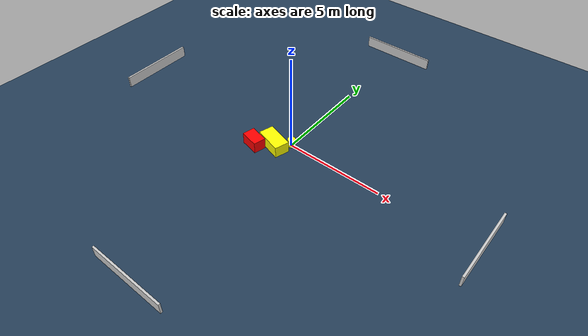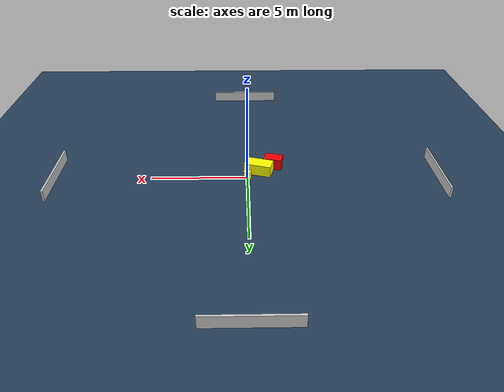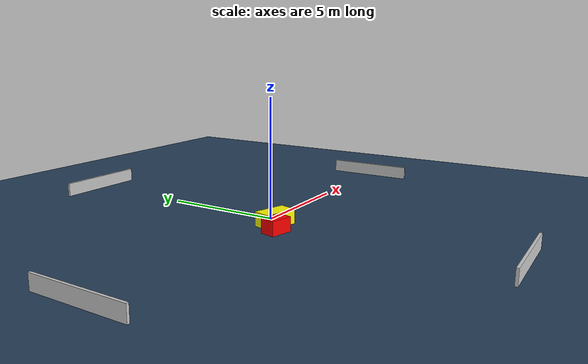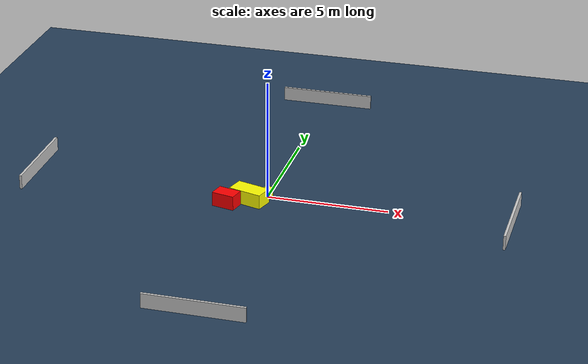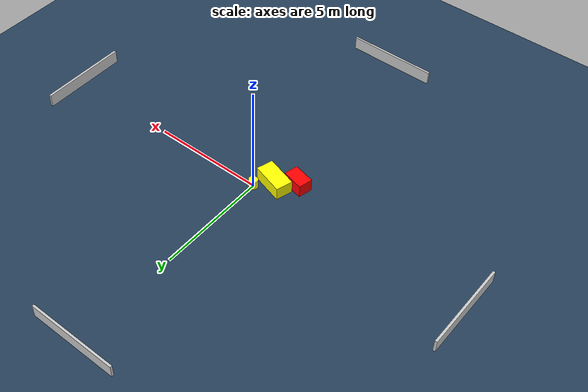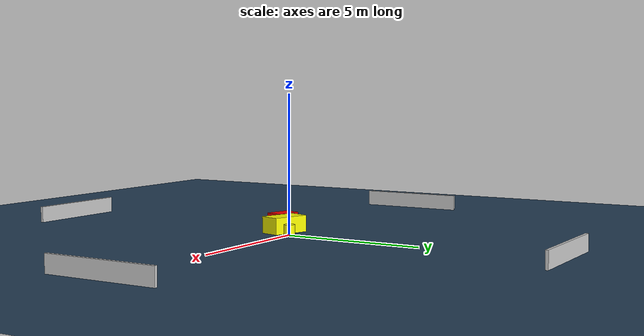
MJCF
<?xml version="1.0" ?>
<mujoco model="generated_environment">
  <option timestep="0.01" integrator="RK4" cone="elliptic"/>
  <default>
    <geom density="1"/>
  </default>
  <asset>
    <texture builtin="gradient" height="3072" name="skybox" rgb1="0.3 0.5 0.7" rgb2="0 0 0" type="skybox" width="512"/>
    <texture builtin="checker" height="300" name="groundplane" rgb1="0.2 0.3 0.4" rgb2="0.1 0.2 0.3" type="2d" width="300"/>
    <material name="groundplane" reflectance="0.2" texrepeat="5 5" texture="groundplane"/>
  </asset>
  <worldbody>
    <light dir="0 0 -1" directional="true" pos="0 0 1.5"/>
    <geom condim="3" friction="0.5 0.005 0.001" material="groundplane" name="floor" pos="0 0 0" size="0 0 0.05" type="plane"/>
    <body name="walls">
      <geom name="wall_1" condim="4" pos="-10.0 0.0 0.3" rgba="0.800000011920929 0.800000011920929 0.800000011920929 1.0" size="0.05 2.0 0.3" type="box"/>
      <geom name="wall_2" condim="4" pos="10.0 0.0 0.3" rgba="0.800000011920929 0.800000011920929 0.800000011920929 1.0" size="0.05 2.0 0.3" type="box"/>
      <geom name="wall_3" condim="4" pos="0.0 -10.0 0.3" rgba="0.800000011920929 0.800000011920929 0.800000011920929 1.0" size="2.0 0.05 0.3" type="box"/>
      <geom name="wall_4" condim="4" pos="0.0 10.0 0.3" rgba="0.800000011920929 0.800000011920929 0.800000011920929 1.0" size="2.0 0.05 0.3" type="box"/>
    </body>
    <body name="robot">
      <joint name="joint_x" type="slide" pos="0 0 0" axis="1 0 0"/>
      <joint name="joint_y" type="slide" pos="0 0 0" axis="0 1 0"/>
      <geom name="robot" type="cylinder" pos="0.0 0.0 0.2" size="0.2 0.2 0.0" mass="5.0" friction="1.0 0.005 0.0001" condim="4" rgba="1.0 1.0 0.0 1.0"/>
    </body>
    <body name="obstacle_1_movable">
      <geom name="obstacle_1_movable" condim="4" pos="-0.6214632363188115 -0.599265261865793 0.3" euler="0 0 163.43770188637652" friction="0.0 0.005 0.001" rgba="1.0 1.0 0.0 1.0" size="0.7162004634077412 0.3777849796130151 0.3" type="box" mass="0.1"/>
      <joint type="free"/>
    </body>
    <body name="obstacle_2_static">
      <geom name="obstacle_2_static" condim="4" pos="-1.4228449306473565 -1.1488315444720416 0.3" euler="0 0 166.74673569756146" friction="0.0 0.005 0.001" rgba="1.0 0.0 0.0 1.0" size="0.47954293711654844 0.3163852116339307 0.3" type="box"/>
    </body>
  </worldbody>
  <actuator>
    <motor name="actuator_x" joint="joint_x" gear="1" ctrlrange="-1 1"/>
    <motor name="actuator_y" joint="joint_y" gear="1" ctrlrange="-1 1"/>
  </actuator>
</mujoco>
